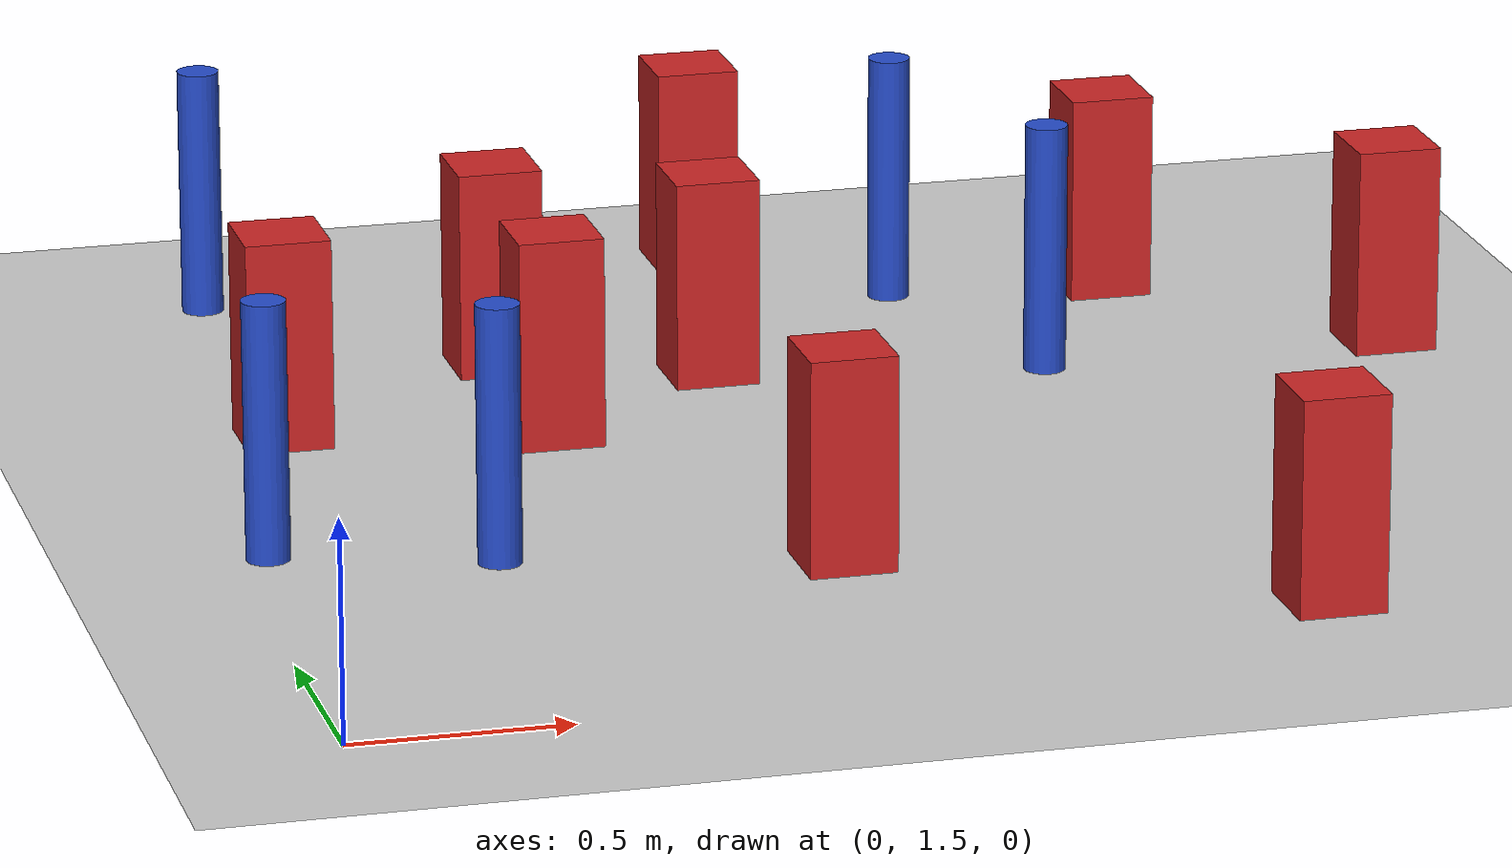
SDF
<sdf version="1.6">
 <world name="default">
  <model name="ground_plane">
   <static>1</static>
   <link name="link">
    <collision name="collision">
     <geometry><plane><normal>0 0 1</normal><size>100 100</size></plane></geometry>
     <surface><friction><ode><mu>100</mu><mu2>50</mu2></ode></friction></surface>
    </collision>
    <visual name="visual">
     <cast_shadows>0</cast_shadows>
     <geometry><plane><normal>0 0 1</normal><size>100 100</size></plane></geometry>
     <material>
      <ambient>1.0 1.0 1.0 1.0</ambient>
      <diffuse>0.8 0.8 0.8 1.0</diffuse>
      <specular>0.01 0.01 0.01 1.000000</specular>
     </material>
    </visual>
   </link>
  </model>
  <model name="square_post_obstacle0">
   <static>true</static>
   <pose>0.278284091233 3.50186409478 8.22691968438e-08 7.22125133819e-06 -7.54495500217e-07 2.29674213826e-05</pose>
   <link name="link">
    <pose>0 0 0.25 0 -0 0</pose>
    <inertial>
     <mass>100</mass>
     <inertia>
      <ixx>0.166667</ixx>
      <ixy>0</ixy>
      <ixz>0</ixz>
      <iyy>0.166667</iyy>
      <iyz>0</iyz>
      <izz>0.166667</izz>
     </inertia>
    </inertial>
    <collision name="collision"><geometry><box><size>.2 .2 .5</size></box></geometry></collision>
    <visual name="visual">
     <geometry><box><size>.2 .2 .5</size></box></geometry>
     <material>
      <script><name>Gazebo/Red</name><uri>file://media/materials/scripts/gazebo.material</uri></script>
     </material>
    </visual>
   </link>
  </model>
  <model name="square_post_obstacle26">
   <static>true</static>
   <pose>1.34254028254 3.71520903693 8.22691968438e-08 7.2212513382e-06 -7.54495500217e-07 2.29674213826e-05</pose>
   <link name="link">
    <pose>0 0 0.25 0 -0 0</pose>
    <inertial>
     <mass>100</mass>
     <inertia>
      <ixx>0.166667</ixx>
      <ixy>0</ixy>
      <ixz>0</ixz>
      <iyy>0.166667</iyy>
      <iyz>0</iyz>
      <izz>0.166667</izz>
     </inertia>
    </inertial>
    <collision name="collision"><geometry><box><size>.2 .2 .5</size></box></geometry></collision>
    <visual name="visual">
     <geometry><box><size>.2 .2 .5</size></box></geometry>
     <material>
      <script><name>Gazebo/Red</name><uri>file://media/materials/scripts/gazebo.material</uri></script>
     </material>
    </visual>
   </link>
  </model>
  <model name="square_post_obstacle48">
   <static>true</static>
   <pose>2.96531372284 3.55485392847 8.22691968438e-08 7.2212513382e-06 -7.54495500217e-07 2.29674213826e-05</pose>
   <link name="link">
    <pose>0 0 0.25 0 -0 0</pose>
    <inertial>
     <mass>100</mass>
     <inertia>
      <ixx>0.166667</ixx>
      <ixy>0</ixy>
      <ixz>0</ixz>
      <iyy>0.166667</iyy>
      <iyz>0</iyz>
      <izz>0.166667</izz>
     </inertia>
    </inertial>
    <collision name="collision"><geometry><box><size>.2 .2 .5</size></box></geometry></collision>
    <visual name="visual">
     <geometry><box><size>.2 .2 .5</size></box></geometry>
     <material>
      <script><name>Gazebo/Red</name><uri>file://media/materials/scripts/gazebo.material</uri></script>
     </material>
    </visual>
   </link>
  </model>
  <model name="pole_obstacle66">
   <static>true</static>
   <pose>0.285047229699 4.5164428657 2.88873142074e-08 -9.90536689592e-09 4.60219948995e-07 -1.20965994956e-07</pose>
   <link name="link">
    <pose>0 0 0.3 0 -0 0</pose>
    <inertial>
     <mass>1</mass>
     <inertia><ixx>0.145833</ixx><ixy>0</ixy><ixz>0</ixz><iyy>0.145833</iyy><iyz>0</iyz><izz>0.125</izz></inertia>
    </inertial>
    <collision name="collision">
     <geometry><cylinder><radius>0.05</radius><length>.6</length></cylinder></geometry>
    </collision>
    <visual name="visual">
     <geometry><cylinder><radius>0.05</radius><length>.6</length></cylinder></geometry>
     <material>
      <script><name>Gazebo/Blue</name><uri>file://media/materials/scripts/gazebo.material</uri></script>
     </material>
    </visual>
   </link>
  </model>
  <model name="pole_obstacle81">
   <static>true</static>
   <pose>0.0798895469012 2.68906135531 2.88873142074e-08 -9.90536689907e-09 4.60219948988e-07 -1.20965994961e-07</pose>
   <link name="link">
    <pose>0 0 0.3 0 -0 0</pose>
    <inertial>
     <mass>1</mass>
     <inertia><ixx>0.145833</ixx><ixy>0</ixy><ixz>0</ixz><iyy>0.145833</iyy><iyz>0</iyz><izz>0.125</izz></inertia>
    </inertial>
    <collision name="collision">
     <geometry><cylinder><radius>0.05</radius><length>.6</length></cylinder></geometry>
    </collision>
    <visual name="visual">
     <geometry><cylinder><radius>0.05</radius><length>.6</length></cylinder></geometry>
     <material>
      <script><name>Gazebo/Blue</name><uri>file://media/materials/scripts/gazebo.material</uri></script>
     </material>
    </visual>
   </link>
  </model>
  <model name="square_post_obstacle80">
   <static>true</static>
   <pose>2.43571187893 4.14643610504 8.22691968438e-08 7.2212513382e-06 -7.54495500217e-07 2.29674213826e-05</pose>
   <link name="link">
    <pose>0 0 0.25 0 -0 0</pose>
    <inertial>
     <mass>100</mass>
     <inertia>
      <ixx>0.166667</ixx>
      <ixy>0</ixy>
      <ixz>0</ixz>
      <iyy>0.166667</iyy>
      <iyz>0</iyz>
      <izz>0.166667</izz>
     </inertia>
    </inertial>
    <collision name="collision"><geometry><box><size>.2 .2 .5</size></box></geometry></collision>
    <visual name="visual">
     <geometry><box><size>.2 .2 .5</size></box></geometry>
     <material>
      <script><name>Gazebo/Red</name><uri>file://media/materials/scripts/gazebo.material</uri></script>
     </material>
    </visual>
   </link>
  </model>
  <model name="square_post_obstacle85">
   <static>true</static>
   <pose>0.88314386118 3.35639436 8.22691968438e-08 7.2212513382e-06 -7.54495500217e-07 2.29674213826e-05</pose>
   <link name="link">
    <pose>0 0 0.25 0 -0 0</pose>
    <inertial>
     <mass>100</mass>
     <inertia>
      <ixx>0.166667</ixx>
      <ixy>0</ixy>
      <ixz>0</ixz>
      <iyy>0.166667</iyy>
      <iyz>0</iyz>
      <izz>0.166667</izz>
     </inertia>
    </inertial>
    <collision name="collision"><geometry><box><size>.2 .2 .5</size></box></geometry></collision>
    <visual name="visual">
     <geometry><box><size>.2 .2 .5</size></box></geometry>
     <material>
      <script><name>Gazebo/Red</name><uri>file://media/materials/scripts/gazebo.material</uri></script>
     </material>
    </visual>
   </link>
  </model>
  <model name="square_post_obstacle93">
   <static>true</static>
   <pose>2.25660715789 1.81995888021 8.22691968438e-08 7.2212513382e-06 -7.54495500217e-07 2.29674213826e-05</pose>
   <link name="link">
    <pose>0 0 0.25 0 -0 0</pose>
    <inertial>
     <mass>100</mass>
     <inertia>
      <ixx>0.166667</ixx>
      <ixy>0</ixy>
      <ixz>0</ixz>
      <iyy>0.166667</iyy>
      <iyz>0</iyz>
      <izz>0.166667</izz>
     </inertia>
    </inertial>
    <collision name="collision"><geometry><box><size>.2 .2 .5</size></box></geometry></collision>
    <visual name="visual">
     <geometry><box><size>.2 .2 .5</size></box></geometry>
     <material>
      <script><name>Gazebo/Red</name><uri>file://media/materials/scripts/gazebo.material</uri></script>
     </material>
    </visual>
   </link>
  </model>
  <model name="square_post_obstacle120">
   <static>true</static>
   <pose>1.30207769927 2.34741639377 8.22691968438e-08 7.2212513382e-06 -7.54495500217e-07 2.29674213826e-05</pose>
   <link name="link">
    <pose>0 0 0.25 0 -0 0</pose>
    <inertial>
     <mass>100</mass>
     <inertia>
      <ixx>0.166667</ixx>
      <ixy>0</ixy>
      <ixz>0</ixz>
      <iyy>0.166667</iyy>
      <iyz>0</iyz>
      <izz>0.166667</izz>
     </inertia>
    </inertial>
    <collision name="collision"><geometry><box><size>.2 .2 .5</size></box></geometry></collision>
    <visual name="visual">
     <geometry><box><size>.2 .2 .5</size></box></geometry>
     <material>
      <script><name>Gazebo/Red</name><uri>file://media/materials/scripts/gazebo.material</uri></script>
     </material>
    </visual>
   </link>
  </model>
  <model name="square_post_obstacle123">
   <static>true</static>
   <pose>1.52329872518 4.62259577691 8.22691968438e-08 7.2212513382e-06 -7.54495500217e-07 2.29674213826e-05</pose>
   <link name="link">
    <pose>0 0 0.25 0 -0 0</pose>
    <inertial>
     <mass>100</mass>
     <inertia>
      <ixx>0.166667</ixx>
      <ixy>0</ixy>
      <ixz>0</ixz>
      <iyy>0.166667</iyy>
      <iyz>0</iyz>
      <izz>0.166667</izz>
     </inertia>
    </inertial>
    <collision name="collision"><geometry><box><size>.2 .2 .5</size></box></geometry></collision>
    <visual name="visual">
     <geometry><box><size>.2 .2 .5</size></box></geometry>
     <material>
      <script><name>Gazebo/Red</name><uri>file://media/materials/scripts/gazebo.material</uri></script>
     </material>
    </visual>
   </link>
  </model>
  <model name="pole_obstacle150">
   <static>true</static>
   <pose>1.918368226 4.20552458931 2.88873142074e-08 -9.90536689852e-09 4.60219948989e-07 -1.2096599496e-07</pose>
   <link name="link">
    <pose>0 0 0.3 0 -0 0</pose>
    <inertial>
     <mass>1</mass>
     <inertia><ixx>0.145833</ixx><ixy>0</ixy><ixz>0</ixz><iyy>0.145833</iyy><iyz>0</iyz><izz>0.125</izz></inertia>
    </inertial>
    <collision name="collision">
     <geometry><cylinder><radius>0.05</radius><length>.6</length></cylinder></geometry>
    </collision>
    <visual name="visual">
     <geometry><cylinder><radius>0.05</radius><length>.6</length></cylinder></geometry>
     <material>
      <script><name>Gazebo/Blue</name><uri>file://media/materials/scripts/gazebo.material</uri></script>
     </material>
    </visual>
   </link>
  </model>
  <model name="square_post_obstacle147">
   <static>true</static>
   <pose>0.868629374607 3.91851099894 8.22691968438e-08 7.2212513382e-06 -7.54495500217e-07 2.29674213826e-05</pose>
   <link name="link">
    <pose>0 0 0.25 0 -0 0</pose>
    <inertial>
     <mass>100</mass>
     <inertia>
      <ixx>0.166667</ixx>
      <ixy>0</ixy>
      <ixz>0</ixz>
      <iyy>0.166667</iyy>
      <iyz>0</iyz>
      <izz>0.166667</izz>
     </inertia>
    </inertial>
    <collision name="collision"><geometry><box><size>.2 .2 .5</size></box></geometry></collision>
    <visual name="visual">
     <geometry><box><size>.2 .2 .5</size></box></geometry>
     <material>
      <script><name>Gazebo/Red</name><uri>file://media/materials/scripts/gazebo.material</uri></script>
     </material>
    </visual>
   </link>
  </model>
  <model name="pole_obstacle198">
   <static>true</static>
   <pose>0.569847753275 2.53554648207 2.88873142074e-08 -9.90536689636e-09 4.60219948994e-07 -1.20965994958e-07</pose>
   <link name="link">
    <pose>0 0 0.3 0 -0 0</pose>
    <inertial>
     <mass>1</mass>
     <inertia><ixx>0.145833</ixx><ixy>0</ixy><ixz>0</ixz><iyy>0.145833</iyy><iyz>0</iyz><izz>0.125</izz></inertia>
    </inertial>
    <collision name="collision">
     <geometry><cylinder><radius>0.05</radius><length>.6</length></cylinder></geometry>
    </collision>
    <visual name="visual">
     <geometry><cylinder><radius>0.05</radius><length>.6</length></cylinder></geometry>
     <material>
      <script><name>Gazebo/Blue</name><uri>file://media/materials/scripts/gazebo.material</uri></script>
     </material>
    </visual>
   </link>
  </model>
  <model name="pole_obstacle201">
   <static>true</static>
   <pose>2.12348998049 3.55852528589 2.88873142074e-08 -9.90536690232e-09 4.6021994898e-07 -1.20965994968e-07</pose>
   <link name="link">
    <pose>0 0 0.3 0 -0 0</pose>
    <inertial>
     <mass>1</mass>
     <inertia><ixx>0.145833</ixx><ixy>0</ixy><ixz>0</ixz><iyy>0.145833</iyy><iyz>0</iyz><izz>0.125</izz></inertia>
    </inertial>
    <collision name="collision">
     <geometry><cylinder><radius>0.05</radius><length>.6</length></cylinder></geometry>
    </collision>
    <visual name="visual">
     <geometry><cylinder><radius>0.05</radius><length>.6</length></cylinder></geometry>
     <material>
      <script><name>Gazebo/Blue</name><uri>file://media/materials/scripts/gazebo.material</uri></script>
     </material>
    </visual>
   </link>
  </model>
 </world>
</sdf>
